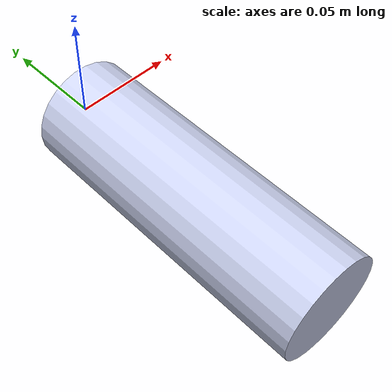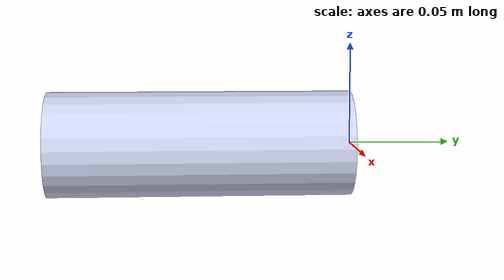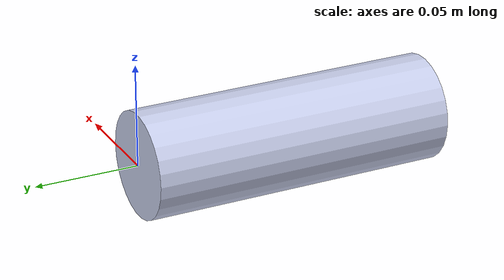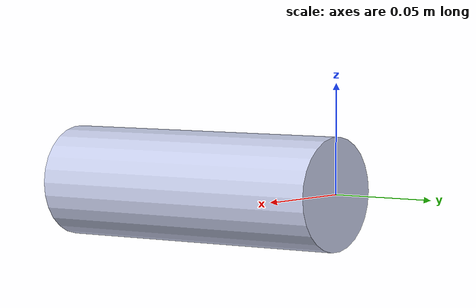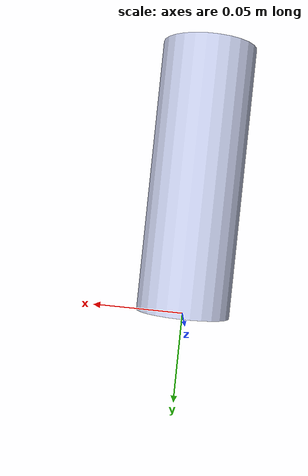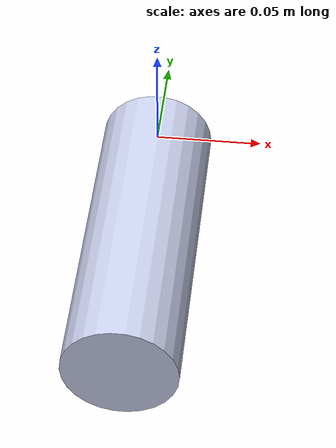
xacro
<?xml version='1.0'?>
<robot name="arm">
  <link
    name="arm">
    <inertial>
      <origin
        xyz="-1.3045E-18 -0.075 4.59227382683391E-18"
        rpy="0 0 0" />
      <mass
        value="0.31856" />
      <inertia
        ixx="0.000651131519931266"
        ixy="0"
        ixz="0"
        iyy="0.000107672433335014"
        iyz="3.32761725244138E-20"
        izz="0.000651131519931266" />
    </inertial>
    <visual>
      <origin
        xyz="0 0 0"
        rpy="1.5707963267949 0 0" />
      <geometry>
        <mesh
          filename="package://arm_desciption/meshes/arm.STL" />
      </geometry>
      <material
        name="">
        <color
          rgba="0.79216 0.81961 0.93333 1" />
      </material>
    </visual>
    <collision>
      <origin
        xyz="0 0 0"
        rpy="1.5707963267949 0 0" />
      <geometry>
        <mesh
          filename="package://arm_desciption/meshes/arm.STL" />
      </geometry>
    </collision>
  </link>
</robot>
